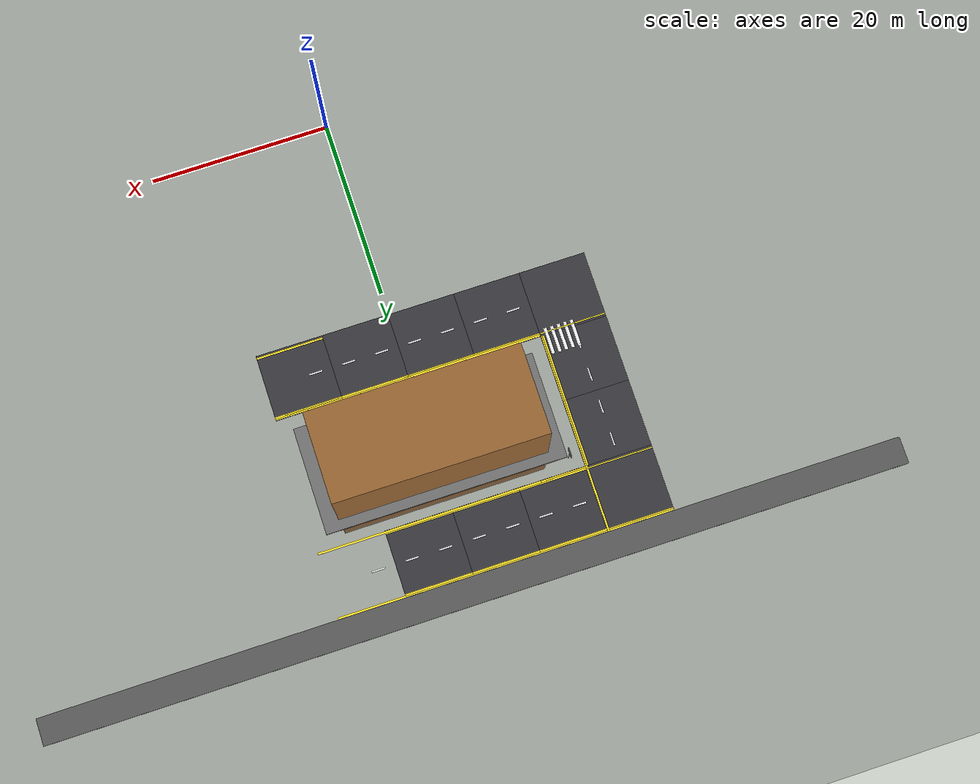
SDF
<sdf version="1.7">
 <world name="compact_city">
  <model name="ground_plane">
   <static>1</static>
   <pose>0 0 0.01 0 -0 0</pose>
   <link name="link">
    <collision name="collision">
     <geometry><plane><normal>0 0 1</normal><size>200 200</size></plane></geometry>
    </collision>
    <visual name="visual">
     <geometry><plane><normal>0 0 1</normal><size>200 200</size></plane></geometry>
     <material>
      <ambient>0.2 0.2 0.2 1</ambient>
      <diffuse>0.25 0.25 0.25 1</diffuse>
      <specular>0.1 0.1 0.1 1</specular>
     </material>
    </visual>
   </link>
  </model>
  <model name="road_tile_4">
   <static>1</static>
   <pose>-18.75 48.75 0.015 0 -0 0</pose>
   <link name="link">
    <collision name="collision"><geometry><box><size>7.5 7.5 0.03</size></box></geometry></collision>
    <visual name="visual">
     <geometry><box><size>7.5 7.5 0.03</size></box></geometry>
     <material>
      <ambient>0.18 0.18 0.2 1</ambient>
      <diffuse>0.22 0.22 0.24 1</diffuse>
      <specular>0.1 0.1 0.1 1</specular>
     </material>
    </visual>
   </link>
  </model>
  <model name="road_tile_5">
   <static>1</static>
   <pose>-11.25 48.75 0.015 0 -0 0</pose>
   <link name="link">
    <collision name="collision"><geometry><box><size>7.5 7.5 0.03</size></box></geometry></collision>
    <visual name="visual">
     <geometry><box><size>7.5 7.5 0.03</size></box></geometry>
     <material>
      <ambient>0.18 0.18 0.2 1</ambient>
      <diffuse>0.22 0.22 0.24 1</diffuse>
      <specular>0.1 0.1 0.1 1</specular>
     </material>
    </visual>
   </link>
  </model>
  <model name="road_tile_6">
   <static>1</static>
   <pose>-3.75 48.75 0.015 0 -0 0</pose>
   <link name="link">
    <collision name="collision"><geometry><box><size>7.5 7.5 0.03</size></box></geometry></collision>
    <visual name="visual">
     <geometry><box><size>7.5 7.5 0.03</size></box></geometry>
     <material>
      <ambient>0.18 0.18 0.2 1</ambient>
      <diffuse>0.22 0.22 0.24 1</diffuse>
      <specular>0.1 0.1 0.1 1</specular>
     </material>
    </visual>
   </link>
  </model>
  <model name="road_tile_7">
   <static>1</static>
   <pose>3.75 48.75 0.015 0 -0 0</pose>
   <link name="link">
    <collision name="collision"><geometry><box><size>7.5 7.5 0.03</size></box></geometry></collision>
    <visual name="visual">
     <geometry><box><size>7.5 7.5 0.03</size></box></geometry>
     <material>
      <ambient>0.18 0.18 0.2 1</ambient>
      <diffuse>0.22 0.22 0.24 1</diffuse>
      <specular>0.1 0.1 0.1 1</specular>
     </material>
    </visual>
   </link>
  </model>
  <model name="road_tile_14">
   <static>1</static>
   <pose>-18.75 41.25 0.015 0 -0 1.5708</pose>
   <link name="link">
    <collision name="collision"><geometry><box><size>7.5 7.5 0.03</size></box></geometry></collision>
    <visual name="visual">
     <geometry><box><size>7.5 7.5 0.03</size></box></geometry>
     <material>
      <ambient>0.18 0.18 0.2 1</ambient>
      <diffuse>0.22 0.22 0.24 1</diffuse>
      <specular>0.1 0.1 0.1 1</specular>
     </material>
    </visual>
   </link>
  </model>
  <model name="road_tile_18">
   <static>1</static>
   <pose>-18.75 33.75 0.015 0 -0 1.5708</pose>
   <link name="link">
    <collision name="collision"><geometry><box><size>7.5 7.5 0.03</size></box></geometry></collision>
    <visual name="visual">
     <geometry><box><size>7.5 7.5 0.03</size></box></geometry>
     <material>
      <ambient>0.18 0.18 0.2 1</ambient>
      <diffuse>0.22 0.22 0.24 1</diffuse>
      <specular>0.1 0.1 0.1 1</specular>
     </material>
    </visual>
   </link>
  </model>
  <model name="road_tile_24">
   <static>1</static>
   <pose>-18.75 26.25 0.015 0 -0 0</pose>
   <link name="link">
    <collision name="collision"><geometry><box><size>7.5 7.5 0.03</size></box></geometry></collision>
    <visual name="visual">
     <geometry><box><size>7.5 7.5 0.03</size></box></geometry>
     <material>
      <ambient>0.18 0.18 0.2 1</ambient>
      <diffuse>0.22 0.22 0.24 1</diffuse>
      <specular>0.1 0.1 0.1 1</specular>
     </material>
    </visual>
   </link>
  </model>
  <model name="road_tile_25">
   <static>1</static>
   <pose>-11.25 26.25 0.015 0 -0 0</pose>
   <link name="link">
    <collision name="collision"><geometry><box><size>7.5 7.5 0.03</size></box></geometry></collision>
    <visual name="visual">
     <geometry><box><size>7.5 7.5 0.03</size></box></geometry>
     <material>
      <ambient>0.18 0.18 0.2 1</ambient>
      <diffuse>0.22 0.22 0.24 1</diffuse>
      <specular>0.1 0.1 0.1 1</specular>
     </material>
    </visual>
   </link>
  </model>
  <model name="road_tile_26">
   <static>1</static>
   <pose>-3.75 26.25 0.015 0 -0 0</pose>
   <link name="link">
    <collision name="collision"><geometry><box><size>7.5 7.5 0.03</size></box></geometry></collision>
    <visual name="visual">
     <geometry><box><size>7.5 7.5 0.03</size></box></geometry>
     <material>
      <ambient>0.18 0.18 0.2 1</ambient>
      <diffuse>0.22 0.22 0.24 1</diffuse>
      <specular>0.1 0.1 0.1 1</specular>
     </material>
    </visual>
   </link>
  </model>
  <model name="road_tile_27">
   <static>1</static>
   <pose>3.75 26.25 0.015 0 -0 0</pose>
   <link name="link">
    <collision name="collision"><geometry><box><size>7.5 7.5 0.03</size></box></geometry></collision>
    <visual name="visual">
     <geometry><box><size>7.5 7.5 0.03</size></box></geometry>
     <material>
      <ambient>0.18 0.18 0.2 1</ambient>
      <diffuse>0.22 0.22 0.24 1</diffuse>
      <specular>0.1 0.1 0.1 1</specular>
     </material>
    </visual>
   </link>
  </model>
  <model name="road_tile_28">
   <static>1</static>
   <pose>11.25 26.25 0.015 0 -0 0</pose>
   <link name="link">
    <collision name="collision"><geometry><box><size>7.5 7.5 0.03</size></box></geometry></collision>
    <visual name="visual">
     <geometry><box><size>7.5 7.5 0.03</size></box></geometry>
     <material>
      <ambient>0.18 0.18 0.2 1</ambient>
      <diffuse>0.22 0.22 0.24 1</diffuse>
      <specular>0.1 0.1 0.1 1</specular>
     </material>
    </visual>
   </link>
  </model>
  <model name="sidewalk_north">
   <static>1</static>
   <pose>0 54 0.15 0 -0 0</pose>
   <link name="link">
    <collision name="collision"><geometry><box><size>96 3 0.3</size></box></geometry></collision>
    <visual name="visual">
     <geometry><box><size>96 3 0.3</size></box></geometry>
     <material>
      <ambient>0.3 0.3 0.3 1</ambient>
      <diffuse>0.35 0.35 0.35 1</diffuse>
      <specular>0.1 0.1 0.1 1</specular>
     </material>
    </visual>
   </link>
  </model>
  <model name="sidewalk_area_top_center">
   <static>1</static>
   <pose>0 37.5 0.2 0 -0 0</pose>
   <link name="link">
    <collision name="collision"><geometry><box><size>27 12 0.4</size></box></geometry></collision>
    <visual name="visual">
     <geometry><box><size>27 12 0.4</size></box></geometry>
     <material>
      <ambient>0.4 0.4 0.4 1</ambient>
      <diffuse>0.45 0.45 0.45 1</diffuse>
      <specular>0.2 0.2 0.2 1</specular>
     </material>
    </visual>
   </link>
  </model>
  <model name="el_176">
   <static>1</static>
   <pose>-15.3 33.75 0.038 0 -0 1.5708</pose>
   <link name="link">
    <visual name="v">
     <geometry><box><size>7.5 0.225 0.002</size></box></geometry>
     <material><ambient>0.9 0.8 0.1 1</ambient><diffuse>0.95 0.85 0.15 1</diffuse></material>
    </visual>
   </link>
  </model>
  <model name="el_178">
   <static>1</static>
   <pose>-15.3 41.25 0.038 0 -0 1.5708</pose>
   <link name="link">
    <visual name="v">
     <geometry><box><size>7.5 0.225 0.002</size></box></geometry>
     <material><ambient>0.9 0.8 0.1 1</ambient><diffuse>0.95 0.85 0.15 1</diffuse></material>
    </visual>
   </link>
  </model>
  <model name="el_184">
   <static>1</static>
   <pose>-11.25 29.7 0.038 0 -0 0</pose>
   <link name="link">
    <visual name="v">
     <geometry><box><size>7.5 0.225 0.002</size></box></geometry>
     <material><ambient>0.9 0.8 0.1 1</ambient><diffuse>0.95 0.85 0.15 1</diffuse></material>
    </visual>
   </link>
  </model>
  <model name="el_185">
   <static>1</static>
   <pose>-11.25 45.3 0.038 0 -0 0</pose>
   <link name="link">
    <visual name="v">
     <geometry><box><size>7.5 0.225 0.002</size></box></geometry>
     <material><ambient>0.9 0.8 0.1 1</ambient><diffuse>0.95 0.85 0.15 1</diffuse></material>
    </visual>
   </link>
  </model>
  <model name="el_186">
   <static>1</static>
   <pose>-11.25 52.2 0.038 0 -0 0</pose>
   <link name="link">
    <visual name="v">
     <geometry><box><size>7.5 0.225 0.002</size></box></geometry>
     <material><ambient>0.9 0.8 0.1 1</ambient><diffuse>0.95 0.85 0.15 1</diffuse></material>
    </visual>
   </link>
  </model>
  <model name="el_192">
   <static>1</static>
   <pose>-3.75 29.7 0.038 0 -0 0</pose>
   <link name="link">
    <visual name="v">
     <geometry><box><size>7.5 0.225 0.002</size></box></geometry>
     <material><ambient>0.9 0.8 0.1 1</ambient><diffuse>0.95 0.85 0.15 1</diffuse></material>
    </visual>
   </link>
  </model>
  <model name="el_193">
   <static>1</static>
   <pose>-3.75 45.3 0.038 0 -0 0</pose>
   <link name="link">
    <visual name="v">
     <geometry><box><size>7.5 0.225 0.002</size></box></geometry>
     <material><ambient>0.9 0.8 0.1 1</ambient><diffuse>0.95 0.85 0.15 1</diffuse></material>
    </visual>
   </link>
  </model>
  <model name="el_194">
   <static>1</static>
   <pose>-3.75 52.2 0.038 0 -0 0</pose>
   <link name="link">
    <visual name="v">
     <geometry><box><size>7.5 0.225 0.002</size></box></geometry>
     <material><ambient>0.9 0.8 0.1 1</ambient><diffuse>0.95 0.85 0.15 1</diffuse></material>
    </visual>
   </link>
  </model>
  <model name="el_202">
   <static>1</static>
   <pose>3.75 29.7 0.038 0 -0 0</pose>
   <link name="link">
    <visual name="v">
     <geometry><box><size>7.5 0.225 0.002</size></box></geometry>
     <material><ambient>0.9 0.8 0.1 1</ambient><diffuse>0.95 0.85 0.15 1</diffuse></material>
    </visual>
   </link>
  </model>
  <model name="el_203">
   <static>1</static>
   <pose>3.75 45.3 0.038 0 -0 0</pose>
   <link name="link">
    <visual name="v">
     <geometry><box><size>7.5 0.225 0.002</size></box></geometry>
     <material><ambient>0.9 0.8 0.1 1</ambient><diffuse>0.95 0.85 0.15 1</diffuse></material>
    </visual>
   </link>
  </model>
  <model name="el_204">
   <static>1</static>
   <pose>3.75 52.2 0.038 0 -0 0</pose>
   <link name="link">
    <visual name="v">
     <geometry><box><size>7.5 0.225 0.002</size></box></geometry>
     <material><ambient>0.9 0.8 0.1 1</ambient><diffuse>0.95 0.85 0.15 1</diffuse></material>
    </visual>
   </link>
  </model>
  <model name="el_209">
   <static>1</static>
   <pose>11.25 22.8 0.038 0 -0 0</pose>
   <link name="link">
    <visual name="v">
     <geometry><box><size>7.5 0.225 0.002</size></box></geometry>
     <material><ambient>0.9 0.8 0.1 1</ambient><diffuse>0.95 0.85 0.15 1</diffuse></material>
    </visual>
   </link>
  </model>
  <model name="el_210">
   <static>1</static>
   <pose>11.25 29.7 0.038 0 -0 0</pose>
   <link name="link">
    <visual name="v">
     <geometry><box><size>7.5 0.225 0.002</size></box></geometry>
     <material><ambient>0.9 0.8 0.1 1</ambient><diffuse>0.95 0.85 0.15 1</diffuse></material>
    </visual>
   </link>
  </model>
  <model name="ld_29">
   <static>1</static>
   <pose>-18.75 31.875 0.038 0 -0 1.5708</pose>
   <link name="link">
    <visual name="v">
     <geometry><box><size>1.5 0.18 0.002</size></box></geometry>
     <material><ambient>1 1 1 1</ambient><diffuse>0.95 0.95 0.95 1</diffuse></material>
    </visual>
   </link>
  </model>
  <model name="ld_30">
   <static>1</static>
   <pose>-18.75 35.625 0.038 0 -0 1.5708</pose>
   <link name="link">
    <visual name="v">
     <geometry><box><size>1.5 0.18 0.002</size></box></geometry>
     <material><ambient>1 1 1 1</ambient><diffuse>0.95 0.95 0.95 1</diffuse></material>
    </visual>
   </link>
  </model>
  <model name="ld_31">
   <static>1</static>
   <pose>-18.75 39.375 0.038 0 -0 1.5708</pose>
   <link name="link">
    <visual name="v">
     <geometry><box><size>1.5 0.18 0.002</size></box></geometry>
     <material><ambient>1 1 1 1</ambient><diffuse>0.95 0.95 0.95 1</diffuse></material>
    </visual>
   </link>
  </model>
  <model name="ld_32">
   <static>1</static>
   <pose>-18.75 43.125 0.038 0 -0 1.5708</pose>
   <link name="link">
    <visual name="v">
     <geometry><box><size>1.5 0.18 0.002</size></box></geometry>
     <material><ambient>1 1 1 1</ambient><diffuse>0.95 0.95 0.95 1</diffuse></material>
    </visual>
   </link>
  </model>
  <model name="ld_73">
   <static>1</static>
   <pose>-13.125 48.75 0.038 0 -0 0</pose>
   <link name="link">
    <visual name="v">
     <geometry><box><size>1.5 0.18 0.002</size></box></geometry>
     <material><ambient>1 1 1 1</ambient><diffuse>0.95 0.95 0.95 1</diffuse></material>
    </visual>
   </link>
  </model>
  <model name="ld_74">
   <static>1</static>
   <pose>-9.375 48.75 0.038 0 -0 0</pose>
   <link name="link">
    <visual name="v">
     <geometry><box><size>1.5 0.18 0.002</size></box></geometry>
     <material><ambient>1 1 1 1</ambient><diffuse>0.95 0.95 0.95 1</diffuse></material>
    </visual>
   </link>
  </model>
  <model name="ld_75">
   <static>1</static>
   <pose>-5.625 48.75 0.038 0 -0 0</pose>
   <link name="link">
    <visual name="v">
     <geometry><box><size>1.5 0.18 0.002</size></box></geometry>
     <material><ambient>1 1 1 1</ambient><diffuse>0.95 0.95 0.95 1</diffuse></material>
    </visual>
   </link>
  </model>
  <model name="ld_76">
   <static>1</static>
   <pose>-1.875 48.75 0.038 0 -0 0</pose>
   <link name="link">
    <visual name="v">
     <geometry><box><size>1.5 0.18 0.002</size></box></geometry>
     <material><ambient>1 1 1 1</ambient><diffuse>0.95 0.95 0.95 1</diffuse></material>
    </visual>
   </link>
  </model>
  <model name="ld_77">
   <static>1</static>
   <pose>1.875 48.75 0.038 0 -0 0</pose>
   <link name="link">
    <visual name="v">
     <geometry><box><size>1.5 0.18 0.002</size></box></geometry>
     <material><ambient>1 1 1 1</ambient><diffuse>0.95 0.95 0.95 1</diffuse></material>
    </visual>
   </link>
  </model>
  <model name="ld_78">
   <static>1</static>
   <pose>5.625 48.75 0.038 0 -0 0</pose>
   <link name="link">
    <visual name="v">
     <geometry><box><size>1.5 0.18 0.002</size></box></geometry>
     <material><ambient>1 1 1 1</ambient><diffuse>0.95 0.95 0.95 1</diffuse></material>
    </visual>
   </link>
  </model>
  <model name="ld_79">
   <static>1</static>
   <pose>9.375 48.75 0.038 0 -0 0</pose>
   <link name="link">
    <visual name="v">
     <geometry><box><size>1.5 0.18 0.002</size></box></geometry>
     <material><ambient>1 1 1 1</ambient><diffuse>0.95 0.95 0.95 1</diffuse></material>
    </visual>
   </link>
  </model>
  <model name="ld_89">
   <static>1</static>
   <pose>-13.125 26.25 0.038 0 -0 0</pose>
   <link name="link">
    <visual name="v">
     <geometry><box><size>1.5 0.18 0.002</size></box></geometry>
     <material><ambient>1 1 1 1</ambient><diffuse>0.95 0.95 0.95 1</diffuse></material>
    </visual>
   </link>
  </model>
  <model name="ld_90">
   <static>1</static>
   <pose>-9.375 26.25 0.038 0 -0 0</pose>
   <link name="link">
    <visual name="v">
     <geometry><box><size>1.5 0.18 0.002</size></box></geometry>
     <material><ambient>1 1 1 1</ambient><diffuse>0.95 0.95 0.95 1</diffuse></material>
    </visual>
   </link>
  </model>
  <model name="ld_91">
   <static>1</static>
   <pose>-5.625 26.25 0.038 0 -0 0</pose>
   <link name="link">
    <visual name="v">
     <geometry><box><size>1.5 0.18 0.002</size></box></geometry>
     <material><ambient>1 1 1 1</ambient><diffuse>0.95 0.95 0.95 1</diffuse></material>
    </visual>
   </link>
  </model>
  <model name="ld_92">
   <static>1</static>
   <pose>-1.875 26.25 0.038 0 -0 0</pose>
   <link name="link">
    <visual name="v">
     <geometry><box><size>1.5 0.18 0.002</size></box></geometry>
     <material><ambient>1 1 1 1</ambient><diffuse>0.95 0.95 0.95 1</diffuse></material>
    </visual>
   </link>
  </model>
  <model name="ld_93">
   <static>1</static>
   <pose>1.875 26.25 0.038 0 -0 0</pose>
   <link name="link">
    <visual name="v">
     <geometry><box><size>1.5 0.18 0.002</size></box></geometry>
     <material><ambient>1 1 1 1</ambient><diffuse>0.95 0.95 0.95 1</diffuse></material>
    </visual>
   </link>
  </model>
  <model name="ld_94">
   <static>1</static>
   <pose>5.625 26.25 0.038 0 -0 0</pose>
   <link name="link">
    <visual name="v">
     <geometry><box><size>1.5 0.18 0.002</size></box></geometry>
     <material><ambient>1 1 1 1</ambient><diffuse>0.95 0.95 0.95 1</diffuse></material>
    </visual>
   </link>
  </model>
  <model name="ld_95">
   <static>1</static>
   <pose>9.375 26.25 0.038 0 -0 0</pose>
   <link name="link">
    <visual name="v">
     <geometry><box><size>1.5 0.18 0.002</size></box></geometry>
     <material><ambient>1 1 1 1</ambient><diffuse>0.95 0.95 0.95 1</diffuse></material>
    </visual>
   </link>
  </model>
  <model name="ie_293">
   <static>1</static>
   <pose>-18.75 29.7 0.038 0 -0 0</pose>
   <link name="link">
    <visual name="v">
     <geometry><box><size>7.5 0.15 0.002</size></box></geometry>
     <material><ambient>0.9 0.8 0.1 1</ambient><diffuse>0.95 0.85 0.15 1</diffuse></material>
    </visual>
   </link>
  </model>
  <model name="ie_298">
   <static>1</static>
   <pose>-18.75 45.3 0.038 0 -0 0</pose>
   <link name="link">
    <visual name="v">
     <geometry><box><size>7.5 0.15 0.002</size></box></geometry>
     <material><ambient>0.9 0.8 0.1 1</ambient><diffuse>0.95 0.85 0.15 1</diffuse></material>
    </visual>
   </link>
  </model>
  <model name="ie_299">
   <static>1</static>
   <pose>-18.75 52.2 0.038 0 -0 0</pose>
   <link name="link">
    <visual name="v">
     <geometry><box><size>7.5 0.15 0.002</size></box></geometry>
     <material><ambient>0.9 0.8 0.1 1</ambient><diffuse>0.95 0.85 0.15 1</diffuse></material>
    </visual>
   </link>
  </model>
  <model name="yolo_traffic_sign_no_left_middle_intersection">
   <static>1</static>
   <pose>-13.6008 43.603 0 0 -0 1.5708</pose>
   <link name="link">
    <collision name="pole_collision">
     <pose>0 0 1.35 0 -0 0</pose>
     <geometry><cylinder><radius>0.045</radius><length>2.7</length></cylinder></geometry>
    </collision>
    <visual name="pole_visual">
     <pose>0 0 1.35 0 -0 0</pose>
     <geometry><cylinder><radius>0.045</radius><length>2.7</length></cylinder></geometry>
     <material><ambient>0.45 0.45 0.45 1</ambient><diffuse>0.55 0.55 0.55 1</diffuse></material>
    </visual>
    <collision name="panel_collision">
     <pose>0 0 3.225 0 -0 0</pose>
     <geometry><box><size>1.05 0.045 1.05</size></box></geometry>
    </collision>
    <visual name="panel_back_visual">
     <pose>0 0 3.225 0 -0 0</pose>
     <geometry><box><size>1.05 0.045 1.05</size></box></geometry>
     <material><ambient>0.42 0.42 0.42 1</ambient><diffuse>0.5 0.5 0.5 1</diffuse></material>
    </visual>
    <visual name="panel_front_visual">
     <pose>0 -0.026 3.225 0 -0 0</pose>
     <geometry><box><size>1.05 0.006 1.05</size></box></geometry>
     <material>
      <script>
       <uri>file:///home/ranim/autoCar_ws/models/traffic_sign_assets/materials/scripts</uri>
       <uri>file:///home/ranim/autoCar_ws/models/traffic_sign_assets/materials/textures</uri>
       <name>TrafficSigns/NoLeftTurn</name>
      </script>
     </material>
    </visual>
   </link>
  </model>
  <model name="edge_h_3">
   <static>1</static>
   <pose>0 45.15 0.038 0 -0 0</pose>
   <link name="link">
    <visual name="visual">
     <geometry><box><size>30 0.225 0.002</size></box></geometry>
     <material><ambient>0.95 0.85 0.1 1</ambient><diffuse>1 0.9 0.15 1</diffuse></material>
    </visual>
   </link>
  </model>
  <model name="edge_h_4">
   <static>1</static>
   <pose>0 52.35 0.038 0 -0 0</pose>
   <link name="link">
    <visual name="visual">
     <geometry><box><size>30 0.225 0.002</size></box></geometry>
     <material><ambient>0.95 0.85 0.1 1</ambient><diffuse>1 0.9 0.15 1</diffuse></material>
    </visual>
   </link>
  </model>
  <model name="edge_h_10">
   <static>1</static>
   <pose>0 29.85 0.038 0 -0 0</pose>
   <link name="link">
    <visual name="visual">
     <geometry><box><size>30 0.225 0.002</size></box></geometry>
     <material><ambient>0.95 0.85 0.1 1</ambient><diffuse>1 0.9 0.15 1</diffuse></material>
    </visual>
   </link>
  </model>
  <model name="edge_v_34">
   <static>1</static>
   <pose>-15.15 41.25 0.038 0 -0 1.5708</pose>
   <link name="link">
    <visual name="visual">
     <geometry><box><size>22.5 0.225 0.002</size></box></geometry>
     <material><ambient>0.95 0.85 0.1 1</ambient><diffuse>1 0.9 0.15 1</diffuse></material>
    </visual>
   </link>
  </model>
  <model name="tedge_495">
   <static>1</static>
   <pose>-18.75 52.35 0.038 0 -0 0</pose>
   <link name="link">
    <visual name="visual">
     <geometry><box><size>7.5 0.225 0.002</size></box></geometry>
     <material><ambient>0.95 0.85 0.1 1</ambient><diffuse>1 0.9 0.15 1</diffuse></material>
    </visual>
   </link>
  </model>
  <model name="xwalk_577">
   <static>1</static>
   <pose>-18.75 30.75 0.038 0 -0 1.5708</pose>
   <link name="link">
    <visual name="visual">
     <geometry><box><size>3 0.375 0.002</size></box></geometry>
     <material><ambient>1 1 1 1</ambient><diffuse>0.95 0.95 0.95 1</diffuse></material>
    </visual>
   </link>
  </model>
  <model name="xwalk_578">
   <static>1</static>
   <pose>-18 30.75 0.038 0 -0 1.5708</pose>
   <link name="link">
    <visual name="visual">
     <geometry><box><size>3 0.375 0.002</size></box></geometry>
     <material><ambient>1 1 1 1</ambient><diffuse>0.95 0.95 0.95 1</diffuse></material>
    </visual>
   </link>
  </model>
  <model name="xwalk_579">
   <static>1</static>
   <pose>-17.25 30.75 0.038 0 -0 1.5708</pose>
   <link name="link">
    <visual name="visual">
     <geometry><box><size>3 0.375 0.002</size></box></geometry>
     <material><ambient>1 1 1 1</ambient><diffuse>0.95 0.95 0.95 1</diffuse></material>
    </visual>
   </link>
  </model>
  <model name="xwalk_580">
   <static>1</static>
   <pose>-16.5 30.75 0.038 0 -0 1.5708</pose>
   <link name="link">
    <visual name="visual">
     <geometry><box><size>3 0.375 0.002</size></box></geometry>
     <material><ambient>1 1 1 1</ambient><diffuse>0.95 0.95 0.95 1</diffuse></material>
    </visual>
   </link>
  </model>
  <model name="xwalk_581">
   <static>1</static>
   <pose>-15.75 30.75 0.038 0 -0 1.5708</pose>
   <link name="link">
    <visual name="visual">
     <geometry><box><size>3 0.375 0.002</size></box></geometry>
     <material><ambient>1 1 1 1</ambient><diffuse>0.95 0.95 0.95 1</diffuse></material>
    </visual>
   </link>
  </model>
  <model name="box_7_clone_clone_clone_4_clone">
   <static>1</static>
   <pose>0.046681 37.4119 0.6 0 -0 0</pose>
   <link name="link">
    <collision name="collision"><geometry><box><size>23.4567 9.94734 21.3231</size></box></geometry></collision>
    <visual name="visual">
     <geometry><box><size>23.4567 9.94734 21.3231</size></box></geometry>
     <material><ambient>0.6 0.4 0.2 1</ambient><diffuse>0.6 0.4 0.2 1</diffuse></material>
    </visual>
   </link>
  </model>
 </world>
</sdf>
